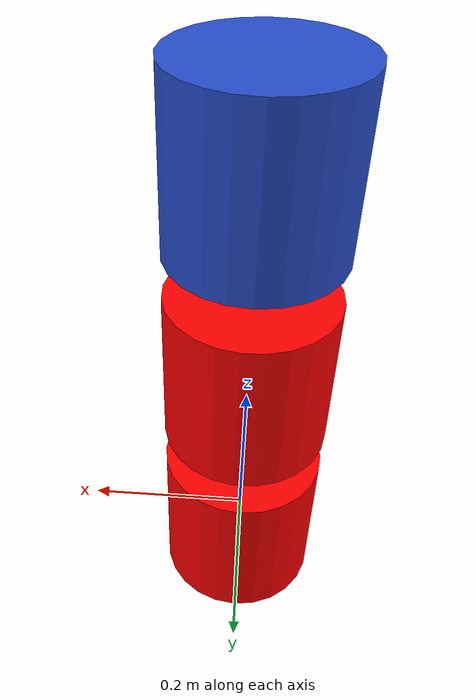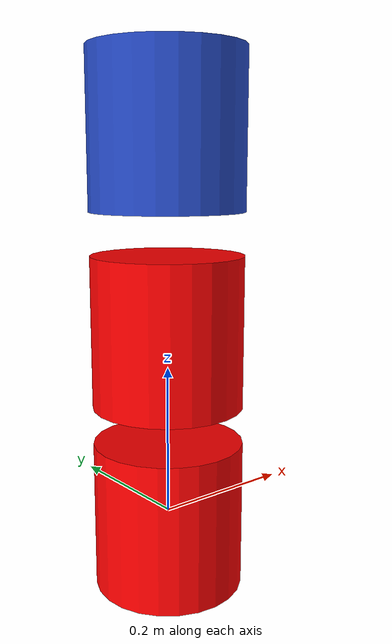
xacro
<?xml version="1.0"?>
<robot xmlns:xacro="http://www.ros.org/wiki/xacro" name="tobot">

  <!-- Constant for the xacro model -->

  <xacro:property name="GROUND_CLEARANCE" value="0.2" />
  <xacro:property name="width" value="0.285" />
  <xacro:property name="bodylen" value="0.355" />
  <xacro:property name="wheel_w" value="0.039" />
  <xacro:property name="wheel_rad" value="0.075" />
  <xacro:property name="plat_rad" value="0.285" />
  <xacro:property name="plat_len" value="0.005" />
  <xacro:property name="HIGH_PLATFORM" value="0.15" />
  <xacro:property name="posz_laser" value="0.285" />
  <xacro:property name="posz_camera" value="0.5" />
  <xacro:property name="fwheel_rad" value="0.0325" />
  <xacro:property name="radar_w" value="0.2" />
  <xacro:property name="radar_rad" value="0.1" />
  <xacro:property name="radar_up_base_laser_link" value="0.25" />
  <xacro:property name="radar_to_velodyne" value="0.255" />
  <xacro:property name="PI" value="3.1415" />
  <xacro:property name="radar_roll" value="3.1415" />
  <xacro:property name="radar_pitch" value="0" />
  <xacro:property name="radar_yaw" value="-0.1" />
  <xacro:property name="velodyne_roll" value="3.1415" />
  <xacro:property name="velodyne_pitch" value="3.1415" />
  <xacro:property name="velodyne_yaw" value="0" />

  <material name="black">
    <color rgba="0 0 0 1"/>
  </material>

  <material name="red">
    <color rgba="1 0 0 1"/>
  </material>

  <!-- Actual frame and materials -->

  <link name="base_laser_link">
    <visual>
      <geometry>
		<cylinder length="${radar_w}" radius="${radar_rad}"/>
      <origin rpy="-1.57075 0 0" xyz="0 0 0"/>
      <material name="red"/>
      </geometry>
      <origin rpy="0 0 0" xyz="0 0 0"/>
      <material name="red"/>
    </visual>
  </link>

  <!--LASER-->
  <link name="laser_frame">
    <visual>
      <geometry>
		<cylinder length="${radar_w}" radius="${radar_rad}"/>
      <origin rpy="-1.57075 0 0" xyz="0 0 0"/>
      <material name="black"/>
      </geometry>
      <origin rpy="0 0 0" xyz="0 0 0"/>
      <material name="red"/>
    </visual>
  </link>

  <joint name="base_laser" type="fixed">
    <parent link="base_laser_link"/>
    <child link="laser_frame"/>
    <origin xyz="0 0 ${radar_up_base_laser_link}" rpy="${radar_roll} ${radar_pitch} ${radar_yaw}"/>
  </joint>

  <!--VELODYNE-->
  <link name="velodyne">
    <visual>
      <geometry>
		<cylinder length="${radar_w}" radius="${radar_rad}"/>
      <origin rpy="0 0 0" xyz="0 0 0"/>
      <material name="black"/>
      </geometry>
      <origin rpy="0 0 0" xyz="0 0 0"/>
      <material name="blue"/>
    </visual>
  </link>

  <joint name="velodyne_joint" type="fixed">
    <parent link="base_laser_link"/>
    <child link="velodyne"/>
    <origin xyz="0 0 ${radar_up_base_laser_link + radar_to_velodyne}" rpy="${velodyne_roll} ${velodyne_pitch} ${velodyne_yaw}"/>
  </joint>

</robot>
